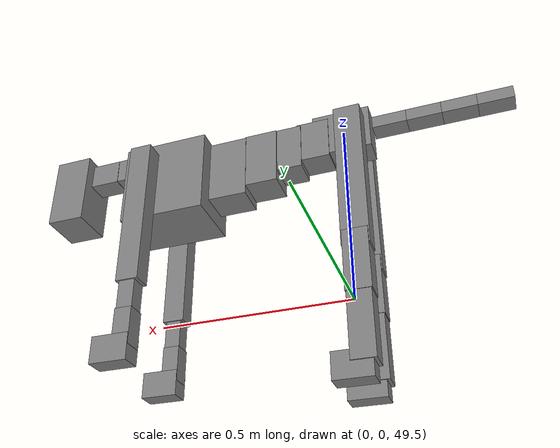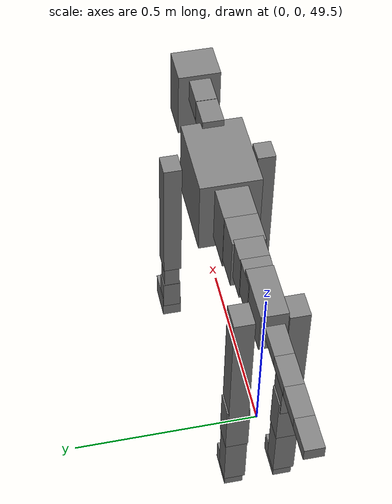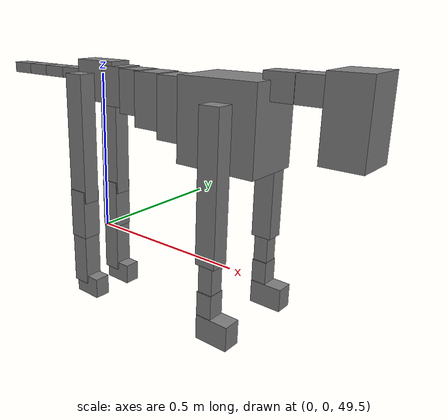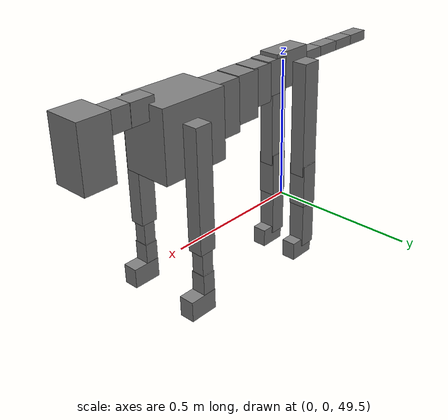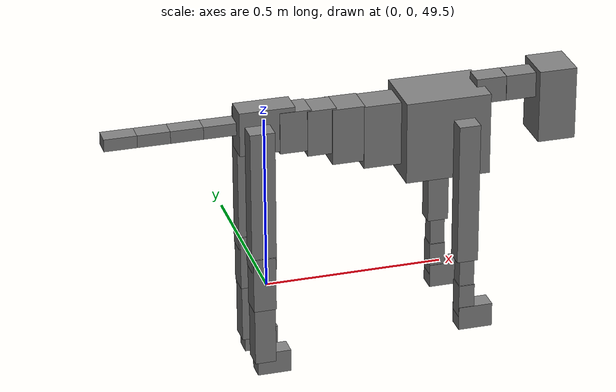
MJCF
<mujoco model="dog">

    <default>
        <joint armature="0.02" stiffness="1" damping="0.2" limited="true"/>
        <geom condim="3" friction="1 0.05 0.05" margin="0.01"/>
        <motor ctrllimited="true" ctrlrange="-1.0 1.0" forcelimited="true" gear="50"/>
    </default>

    <compiler inertiafromgeom="true" angle="radian"/>

    <option timestep="0.016" iterations="50" tolerance="1e-10" solver="Newton" jacobian="dense" cone="pyramidal"/>

    <size nconmax="20000" njmax="60000" nstack="5000000"/>
    <visual>
        <map force="0.1" zfar="30"/>
        <rgba haze="0.15 0.25 0.35 1"/>
        <quality shadowsize="2048"/>
        <global offwidth="800" offheight="800"/>
    </visual>

    <asset>
        <texture type="skybox" builtin="gradient" rgb1="0.3 0.5 0.7" rgb2="0 0 0" width="512" height="512"/>
        <texture name="texplane" type="2d" builtin="checker" rgb1=".2 .3 .4" rgb2=".1 0.15 0.2" width="512" height="512"
                 mark="cross" markrgb=".8 .8 .8"/>
        <texture name="texgeom" type="cube" builtin="flat" mark="cross" width="127" height="1278" rgb1="0.8 0.6 0.4"
                 rgb2="0.8 0.6 0.4" markrgb="1 1 1" random="0.01"/>

        <material name="matplane" reflectance="0.3" texture="texplane" texrepeat="1 1" texuniform="true"/>
        <material name="matgeom" texture="texgeom" texuniform="true" rgba="0.8 0.6 .4 1"/>
    </asset>

    <worldbody>
        <geom name="floor" pos="0 0 0" size="0 0 .25" type="plane" material="matplane" condim="3"/>

        <light directional="false" diffuse=".2 .2 .2" specular="0 0 0" pos="0 0 5" dir="0 0 -1" castshadow="false"/>
        <light mode="targetbodycom" target="torso" directional="false" diffuse=".8 .8 .8" specular="0.3 0.3 0.3"
               pos="0 0 4.0" dir="0 0 -1"/>

        <body name="root" pos="0 0 50">
            <freejoint name="root_1"/>
            <geom type="box" pos="0 0 -0.02" size="0.0774  0.0358  0.063" density="2030"/>

            <body name="spine1" pos="0.054 0 0">
                <joint name="spine1_y" axis="0 1 0" range="0 0.7" limited="true"/>
                <geom type="box" pos="0.02375 0 -0.03" size="0.04375  0.0375  0.05985" density="2030"/>

                <body name="spine2" pos="0.0612 0 0">
                    <joint name="spine2_y" axis="0 1 0" range="-0.15 0.15" limited="true"/>
                    <geom type="box" pos="0.03555  0  -0.04" size="0.04055  0.039  0.06615" density="2030"/>

                    <body name="spine3" pos="0.0730 0 0">
                        <joint name="spine3_y" axis="0 1 0" range="-0.15 0.15" limited="true"/>
                        <geom type="box" pos="0.03555  0  -0.057" size="0.04555  0.0445  0.081" density="2030"/>

                        <body name="spine4" pos="0.0780 0 0">
                            <joint name="spine4_y" axis="0 1 0" range="-0.15 0.15" limited="true"/>
                            <geom type="box" pos="0.05265  0  -0.07" size="0.05265  0.045  0.09135" density="2030"/>

                            <body name="torso" pos="0.1082 0 0">
                                <joint name="torso_y" axis="0 1 0" range="-0.15 0.15" limited="true"/>
                                <geom type="box" pos="0.11925  0  -0.085" size="0.11925  0.085  0.11745"
                                      density="2030"/>

                                <body name="neck1" pos="0.2160  0   0.0180">
                                    <joint name="neck1_y" axis="0 1 0" range="-1.2  -1" limited="true"/>
                                    <geom type="box" pos="0.0423  0  0" size="0.0423  0.03  0.036" density="2325"/>

                                    <body name="neck2" pos="0.0853  0  0">
                                        <joint name="neck2_y" axis="0 1 0" range="0.1  0" limited="true"/>
                                        <geom type="box" pos="0.0423  0  0" size="0.0423  0.03  0.036" density="2325"/>

                                        <body name="head" pos="0.0853  0  0">
                                            <joint name="head_y" axis="0 1 0" range="-0.3  -0.2" limited="true"/>
                                            <geom type="box" pos="0.0531  0  -0.055" size="0.0531  0.06  0.1044"
                                                  density="4030"/>

                                        </body>
                                    </body>
                                </body>

                                <body name="front_shoulder" pos="0.156  0   -0.0480">
                                    <joint name="front_shoulder_y" axis="0 1 0" range="-1 1.5" limited="true"/>
                                    <geom type="box" pos="0 0.13 -0.1776" size="0.0297  0.0254  0.2042" density="1158"/>
                                    <geom type="box" pos="0 -0.13 -0.1776" size="0.0297  0.0254  0.2042"
                                          density="1158"/>

                                    <body name="front_elbow" pos="0  0  -0.3552">
                                        <joint name="front_elbow_y" axis="0 1 0" range="-2 0" limited="true"/>
                                        <geom type="box" pos="0 0.13 -0.0575" size="0.0211  0.0215  0.0575"
                                              density="1081"/>
                                        <geom type="box" pos="0 -0.13 -0.0575" size="0.0211  0.0215  0.0575"
                                              density="1081"/>

                                        <body name="front_wrist" pos="0  0  -0.1150">
                                            <joint name="front_wrist_y" axis="0 1 0" range="-0.2 0" limited="true"/>
                                            <geom type="box" pos="0 0.13 -0.0345" size="0.0223  0.0248  0.0476"
                                                  density="1664"/>
                                            <geom type="box" pos="0 -0.13 -0.0345" size="0.0223  0.0248  0.0476"
                                                  density="1664"/>

                                            <body name="front_finger_end" pos="0  0  -0.0689">
                                                <joint name="front_finger_y" axis="0 1 0" range="-0.4 1"
                                                       limited="true"/>
                                                <geom type="box" pos="0.0263  0.13  -0.0192"
                                                      size="0.0482  0.0263  0.0342" density="1515"/>
                                                <geom type="box" pos="0.0263  -0.13  -0.0192"
                                                      size="0.0482  0.0263  0.0342" density="1515"/>

                                            </body>

                                        </body>
                                    </body>
                                </body>

                            </body>
                        </body>
                    </body>
                </body>
            </body>

            <body name="back_hip" pos="-0.03 0 -0.018">
                <joint name="back_hip_y" axis="0 1 0" range="-1.5 0.3" limited="true"/>
                <geom type="box" pos="0 0.07 -0.1823" size="0.0345  0.0271  0.2051" density="1154"/>
                <geom type="box" pos="0 -0.07 -0.1823" size="0.0345  0.0271  0.2051" density="1154"/>

                <body name="back_knee" pos="0  0  -0.3646">
                    <joint name="back_knee_y" axis="0 1 0" range="0 2.8" limited="true"/>
                    <geom type="box" pos="0 0.07 -0.0636" size="0.0315  0.0311  0.0791" density="1227"/>
                    <geom type="box" pos="0 -0.07 -0.0636" size="0.0315  0.0311  0.0791" density="1227"/>

                    <body name="back_ankle" pos="0  0  -0.1272">
                        <joint name="back_ankle_y" axis="0 1 0" range="-2.2 0" limited="true"/>
                        <geom type="box" pos="0 0.07 -0.0838" size="0.0295  0.0295  0.0950" density="1284"/>
                        <geom type="box" pos="0 -0.07 -0.0838" size="0.0295  0.0295  0.0950" density="1284"/>

                        <body name="back_toe_end" pos="0  0  -0.1676">
                            <joint name="back_toe_y" axis="0 1 0" range="-0.4 1" limited="true"/>
                            <geom type="box" pos="0.0257  0.07  -0.0178" size="0.0471  0.0257  0.0328" density="1515"/>
                            <geom type="box" pos="0.0257  -0.07  -0.0178" size="0.0471  0.0257  0.0328" density="1515"/>

                        </body>
                    </body>
                </body>
            </body>

            <body name="tail1" pos="-0.074 0 -0.006">
                <joint name="tail1_y" axis="0 1 0" range="-0.2 0.2" limited="true"/>
                <geom type="box" pos="-0.0536  0  0" size="0.045  0.025  0.0175" density="1587"/>

                <body name="tail2" pos="-0.09 0 0">
                    <joint name="tail2_y" axis="0 1 0" range="-0.2 0.2" limited="true"/>
                    <geom type="box" pos="-0.0536  0  0" size="0.045  0.025  0.0175" density="1587"/>

                    <body name="tail3" pos="-0.09 0 0">
                        <joint name="tail3_y" axis="0 1 0" range="-0.2 0.2" limited="true"/>
                        <geom type="box" pos="-0.0536  0  0" size="0.045  0.025  0.0175" density="1587"/>

                        <body name="tail4" pos="-0.09 0 0">
                            <joint name="tail4_y" axis="0 1 0" range="-0.2 0.2" limited="true"/>
                            <geom type="box" pos="-0.0536  0  0" size="0.045  0.025  0.0175" density="1587"/>

                        </body>
                    </body>
                </body>
            </body>
        </body>
    </worldbody>

    <actuator>
        <motor joint="spine1_y" forcerange="-150 150     "/>
        <motor joint="spine2_y" forcerange="-150 150     "/>
        <motor joint="spine3_y" forcerange="-150 150     "/>
        <motor joint="spine4_y" forcerange="-150 150     "/>
        <motor joint="torso_y" forcerange="-150 150     "/>
        <motor joint="neck1_y" forcerange="-100 100       "/>
        <motor joint="neck2_y" forcerange="-100 100       "/>
        <motor joint="head_y" forcerange="-150 150       "/>
        <motor joint="front_shoulder_y" forcerange="-130.51 138.86"/>
        <motor joint="front_elbow_y" forcerange="-139.05 117.62"/>
        <motor joint="front_wrist_y" forcerange="-70.51 127.66"/>
        <motor joint="front_finger_y" forcerange="-23.52 76.78"/>
        <motor joint="back_hip_y" forcerange="-234.25 326.68"/>
        <motor joint="back_knee_y" forcerange="-308.69 343.37"/>
        <motor joint="back_angle_y" forcerange="-180.08 191.84"/>
        <motor joint="back_toe_y" forcerange="-52.32 73.05"/>
        <motor joint="tail1_y" forcerange="-50 50     "/>
        <motor joint="tail2_y" forcerange="-50 50     "/>
        <motor joint="tail3_y" forcerange="-50 50     "/>
        <motor joint="tail4_y" forcerange="-50 50     "/>
    </actuator>
</mujoco>
